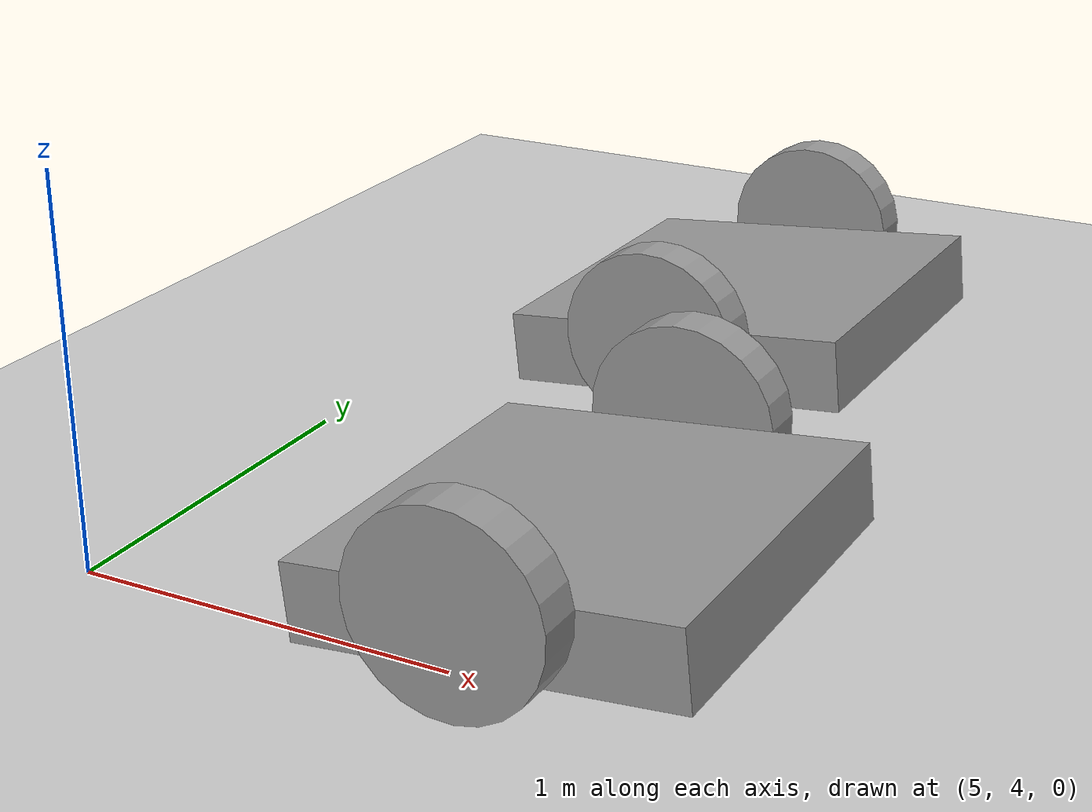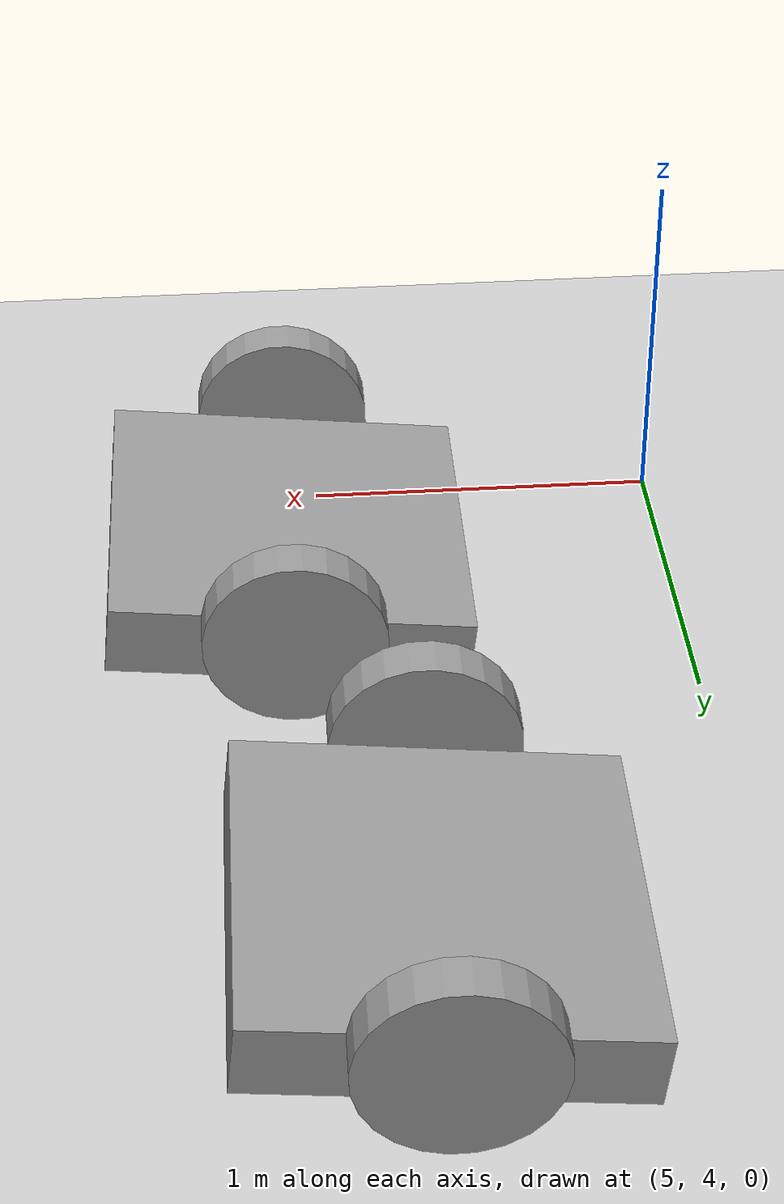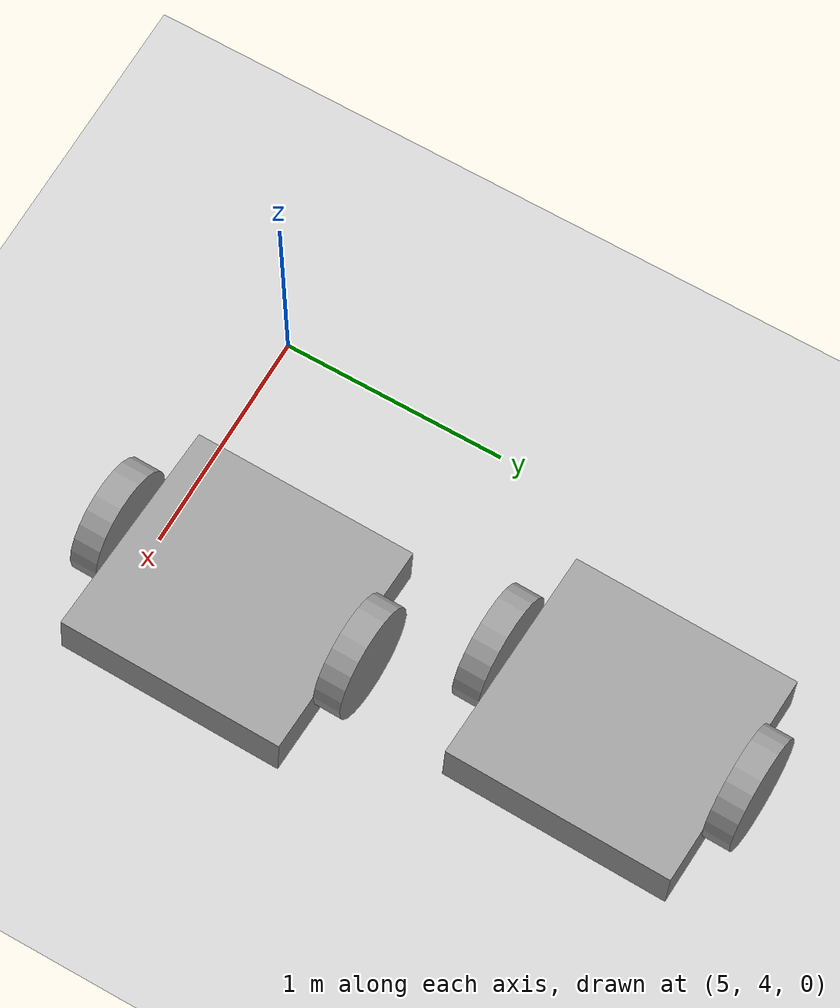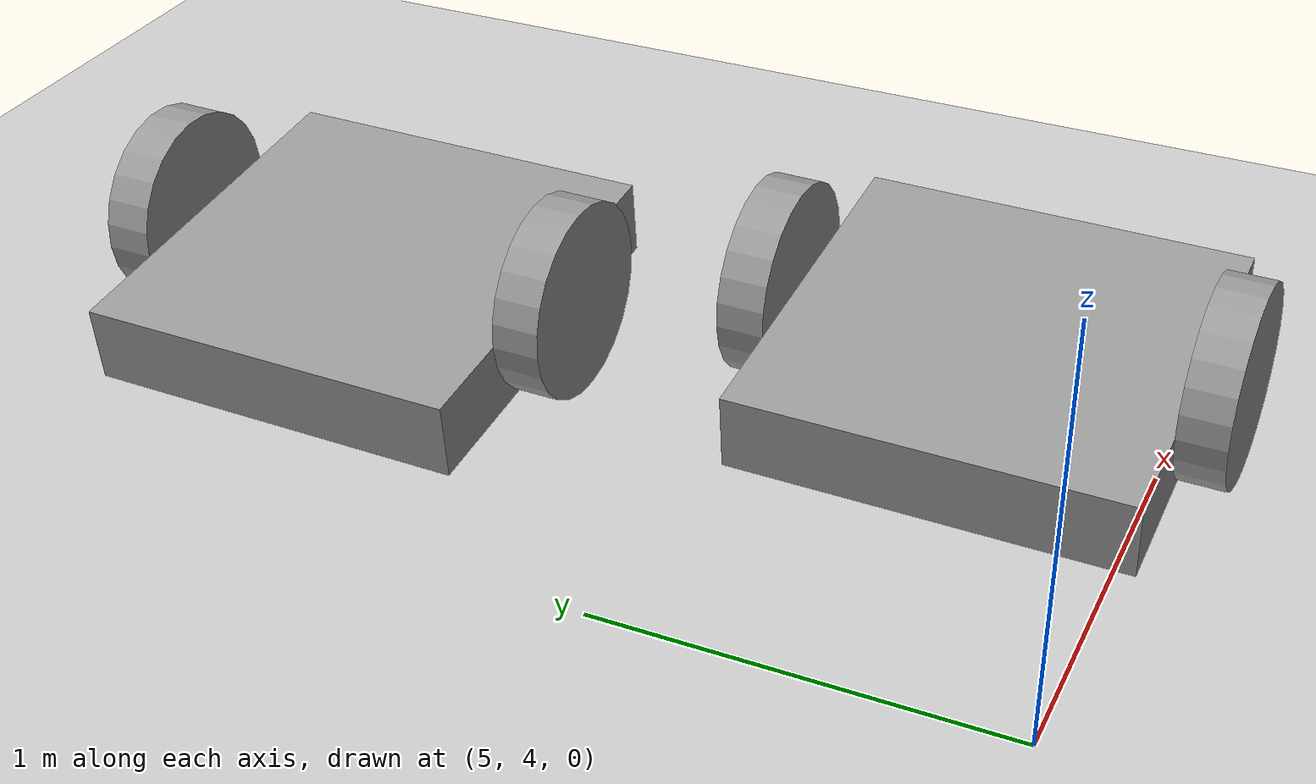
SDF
<sdf version="1.6">
 <world name="default">
  <model name="ground_plane">
   <static>1</static>
   <link name="link">
    <collision name="collision">
     <geometry><plane><normal>0 0 1</normal><size>100 100</size></plane></geometry>
     <surface>
      <contact><collide_bitmask>65535</collide_bitmask></contact>
      <friction><ode><mu>100</mu><mu2>50</mu2></ode></friction>
     </surface>
    </collision>
    <visual name="visual">
     <cast_shadows>0</cast_shadows>
     <geometry><plane><normal>0 0 1</normal><size>100 100</size></plane></geometry>
     <material>
      <script><uri>file://media/materials/scripts/gazebo.material</uri><name>Gazebo/Grey</name></script>
     </material>
    </visual>
   </link>
  </model>
  <model name="HumanoidRobot">
   <link name="link_2">
    <pose>-0 -0 -0.066667 0 -0 0</pose>
    <inertial>
     <mass>1</mass>
     <inertia>
      <ixx>0.166667</ixx>
      <ixy>0</ixy>
      <ixz>0</ixz>
      <iyy>0.166667</iyy>
      <iyz>0</iyz>
      <izz>0.166667</izz>
     </inertia>
     <pose>0 0 0.15 0 -0 0</pose>
    </inertial>
    <visual name="visual">
     <geometry><box><size>1 1 0.2</size></box></geometry>
     <material>
      <lighting>1</lighting>
      <script><uri>file://media/materials/scripts/gazebo.material</uri><name>Gazebo/Grey</name></script>
      <shader type="pixel"><normal_map>__default__</normal_map></shader>
      <ambient>0.3 0.3 0.3 1</ambient>
      <diffuse>0.7 0.7 0.7 1</diffuse>
      <specular>0.01 0.01 0.01 1</specular>
      <emissive>0 0 0 1</emissive>
     </material>
    </visual>
    <collision name="collision">
     <geometry><box><size>1 1 0.2</size></box></geometry>
     <surface>
      <friction>
       <ode><mu>1</mu><mu2>1</mu2><fdir1>0 0 0</fdir1><slip1>0</slip1><slip2>0</slip2></ode>
       <torsional>
        <coefficient>1</coefficient>
        <patch_radius>0</patch_radius>
        <surface_radius>0</surface_radius>
        <use_patch_radius>1</use_patch_radius>
        <ode><slip>0</slip></ode>
       </torsional>
      </friction>
      <bounce><restitution_coefficient>0</restitution_coefficient><threshold>1e+06</threshold></bounce>
      <contact>
       <collide_without_contact>0</collide_without_contact>
       <collide_without_contact_bitmask>1</collide_without_contact_bitmask>
       <collide_bitmask>1</collide_bitmask>
       <ode>
        <soft_cfm>0</soft_cfm>
        <soft_erp>0.2</soft_erp>
        <kp>1e+13</kp>
        <kd>1</kd>
        <max_vel>0.01</max_vel>
        <min_depth>0</min_depth>
       </ode>
       <bullet>
        <split_impulse>1</split_impulse>
        <split_impulse_penetration_threshold>-0.01</split_impulse_penetration_threshold>
        <soft_cfm>0</soft_cfm>
        <soft_erp>0.2</soft_erp>
        <kp>1e+13</kp>
        <kd>1</kd>
       </bullet>
      </contact>
     </surface>
    </collision>
   </link>
   <link name="link_3">
    <pose>-0 -0.560024 0.033333 1.5707 -0 0</pose>
    <inertial>
     <mass>1</mass>
     <inertia><ixx>0.145833</ixx><ixy>0</ixy><ixz>0</ixz><iyy>0.145833</iyy><iyz>0</iyz><izz>0.125</izz></inertia>
     <pose>0 0 0.25 1.5707 -0 0</pose>
    </inertial>
    <visual name="visual">
     <geometry><cylinder><radius>0.25</radius><length>0.12</length></cylinder></geometry>
     <material>
      <lighting>1</lighting>
      <script><uri>file://media/materials/scripts/gazebo.material</uri><name>Gazebo/Grey</name></script>
      <shader type="pixel"><normal_map>__default__</normal_map></shader>
      <ambient>0.3 0.3 0.3 1</ambient>
      <diffuse>0.7 0.7 0.7 1</diffuse>
      <specular>0.01 0.01 0.01 1</specular>
      <emissive>0 0 0 1</emissive>
     </material>
    </visual>
    <collision name="collision">
     <geometry><cylinder><radius>0.25</radius><length>0.12</length></cylinder></geometry>
     <surface>
      <friction>
       <ode><mu>1</mu><mu2>1</mu2><fdir1>0 0 0</fdir1><slip1>0</slip1><slip2>0</slip2></ode>
       <torsional>
        <coefficient>1</coefficient>
        <patch_radius>0</patch_radius>
        <surface_radius>0</surface_radius>
        <use_patch_radius>1</use_patch_radius>
        <ode><slip>0</slip></ode>
       </torsional>
      </friction>
      <bounce><restitution_coefficient>0</restitution_coefficient><threshold>1e+06</threshold></bounce>
      <contact>
       <collide_without_contact>0</collide_without_contact>
       <collide_without_contact_bitmask>1</collide_without_contact_bitmask>
       <collide_bitmask>1</collide_bitmask>
       <ode>
        <soft_cfm>0</soft_cfm>
        <soft_erp>0.2</soft_erp>
        <kp>1e+13</kp>
        <kd>1</kd>
        <max_vel>0.01</max_vel>
        <min_depth>0</min_depth>
       </ode>
       <bullet>
        <split_impulse>1</split_impulse>
        <split_impulse_penetration_threshold>-0.01</split_impulse_penetration_threshold>
        <soft_cfm>0</soft_cfm>
        <soft_erp>0.2</soft_erp>
        <kp>1e+13</kp>
        <kd>1</kd>
       </bullet>
      </contact>
     </surface>
    </collision>
   </link>
   <link name="link_3_clone">
    <pose>-0 0.560024 0.033333 1.5707 -0 0</pose>
    <inertial>
     <mass>1</mass>
     <inertia><ixx>0.145833</ixx><ixy>0</ixy><ixz>0</ixz><iyy>0.145833</iyy><iyz>0</iyz><izz>0.125</izz></inertia>
     <pose>0 0 0.25 1.5707 -0 0</pose>
    </inertial>
    <visual name="visual">
     <geometry><cylinder><radius>0.25</radius><length>0.12</length></cylinder></geometry>
     <material>
      <lighting>1</lighting>
      <script><uri>file://media/materials/scripts/gazebo.material</uri><name>Gazebo/Grey</name></script>
      <shader type="pixel"><normal_map>__default__</normal_map></shader>
      <ambient>0.3 0.3 0.3 1</ambient>
      <diffuse>0.7 0.7 0.7 1</diffuse>
      <specular>0.01 0.01 0.01 1</specular>
      <emissive>0 0 0 1</emissive>
     </material>
    </visual>
    <collision name="collision">
     <geometry><cylinder><radius>0.25</radius><length>0.12</length></cylinder></geometry>
     <surface>
      <friction>
       <ode><mu>1</mu><mu2>1</mu2><fdir1>0 0 0</fdir1><slip1>0</slip1><slip2>0</slip2></ode>
       <torsional>
        <coefficient>1</coefficient>
        <patch_radius>0</patch_radius>
        <surface_radius>0</surface_radius>
        <use_patch_radius>1</use_patch_radius>
        <ode><slip>0</slip></ode>
       </torsional>
      </friction>
      <bounce><restitution_coefficient>0</restitution_coefficient><threshold>1e+06</threshold></bounce>
      <contact>
       <collide_without_contact>0</collide_without_contact>
       <collide_without_contact_bitmask>1</collide_without_contact_bitmask>
       <collide_bitmask>1</collide_bitmask>
       <ode>
        <soft_cfm>0</soft_cfm>
        <soft_erp>0.2</soft_erp>
        <kp>1e+13</kp>
        <kd>1</kd>
        <max_vel>0.01</max_vel>
        <min_depth>0</min_depth>
       </ode>
       <bullet>
        <split_impulse>1</split_impulse>
        <split_impulse_penetration_threshold>-0.01</split_impulse_penetration_threshold>
        <soft_cfm>0</soft_cfm>
        <soft_erp>0.2</soft_erp>
        <kp>1e+13</kp>
        <kd>1</kd>
       </bullet>
      </contact>
     </surface>
    </collision>
   </link>
   <joint name="link_2_JOINT_2" type="revolute">
    <parent>link_2</parent>
    <child>link_3</child>
    <axis>
     <xyz>0 0 1</xyz>
     <use_parent_model_frame>0</use_parent_model_frame>
     <limit>
      <lower>-1.79769e+308</lower>
      <upper>1.79769e+308</upper>
      <effort>-1</effort>
      <velocity>-1</velocity>
     </limit>
     <dynamics>
      <spring_reference>0</spring_reference>
      <spring_stiffness>0</spring_stiffness>
      <damping>0</damping>
     </dynamics>
    </axis>
    <physics>
     <ode><limit><cfm>0</cfm><erp>0.2</erp></limit><suspension><cfm>0</cfm><erp>0.2</erp></suspension></ode>
    </physics>
   </joint>
   <joint name="link_2_JOINT_3" type="revolute">
    <parent>link_2</parent>
    <child>link_3_clone</child>
    <axis>
     <xyz>0 0 1</xyz>
     <use_parent_model_frame>0</use_parent_model_frame>
     <limit>
      <lower>-1.79769e+308</lower>
      <upper>1.79769e+308</upper>
      <effort>-1</effort>
      <velocity>-1</velocity>
     </limit>
     <dynamics>
      <spring_reference>0</spring_reference>
      <spring_stiffness>0</spring_stiffness>
      <damping>0</damping>
     </dynamics>
    </axis>
    <physics>
     <ode><limit><cfm>0</cfm><erp>0.2</erp></limit><suspension><cfm>0</cfm><erp>0.2</erp></suspension></ode>
    </physics>
   </joint>
   <static>0</static>
   <pose>5.8203 6.00579 0.216847 0 -0.102206 -0.022161</pose>
  </model>
  <model name="HumanoidRobot_0">
   <link name="link_2">
    <pose>-0 -0 -0.066667 0 -0 0</pose>
    <inertial>
     <mass>1</mass>
     <inertia>
      <ixx>0.166667</ixx>
      <ixy>0</ixy>
      <ixz>0</ixz>
      <iyy>0.166667</iyy>
      <iyz>0</iyz>
      <izz>0.166667</izz>
     </inertia>
     <pose>0 0 0.15 0 -0 0</pose>
    </inertial>
    <visual name="visual">
     <geometry><box><size>1 1 0.2</size></box></geometry>
     <material>
      <lighting>1</lighting>
      <script><uri>file://media/materials/scripts/gazebo.material</uri><name>Gazebo/Grey</name></script>
      <shader type="pixel"><normal_map>__default__</normal_map></shader>
      <ambient>0.3 0.3 0.3 1</ambient>
      <diffuse>0.7 0.7 0.7 1</diffuse>
      <specular>0.01 0.01 0.01 1</specular>
      <emissive>0 0 0 1</emissive>
     </material>
    </visual>
    <collision name="collision">
     <geometry><box><size>1 1 0.2</size></box></geometry>
     <surface>
      <friction>
       <ode><mu>1</mu><mu2>1</mu2><fdir1>0 0 0</fdir1><slip1>0</slip1><slip2>0</slip2></ode>
       <torsional>
        <coefficient>1</coefficient>
        <patch_radius>0</patch_radius>
        <surface_radius>0</surface_radius>
        <use_patch_radius>1</use_patch_radius>
        <ode><slip>0</slip></ode>
       </torsional>
      </friction>
      <bounce><restitution_coefficient>0</restitution_coefficient><threshold>1e+06</threshold></bounce>
      <contact>
       <collide_without_contact>0</collide_without_contact>
       <collide_without_contact_bitmask>1</collide_without_contact_bitmask>
       <collide_bitmask>1</collide_bitmask>
       <ode>
        <soft_cfm>0</soft_cfm>
        <soft_erp>0.2</soft_erp>
        <kp>1e+13</kp>
        <kd>1</kd>
        <max_vel>0.01</max_vel>
        <min_depth>0</min_depth>
       </ode>
       <bullet>
        <split_impulse>1</split_impulse>
        <split_impulse_penetration_threshold>-0.01</split_impulse_penetration_threshold>
        <soft_cfm>0</soft_cfm>
        <soft_erp>0.2</soft_erp>
        <kp>1e+13</kp>
        <kd>1</kd>
       </bullet>
      </contact>
     </surface>
    </collision>
   </link>
   <link name="link_3">
    <pose>-0 -0.560024 0.033333 1.5707 -0 0</pose>
    <inertial>
     <mass>1</mass>
     <inertia><ixx>0.145833</ixx><ixy>0</ixy><ixz>0</ixz><iyy>0.145833</iyy><iyz>0</iyz><izz>0.125</izz></inertia>
     <pose>0 0 0.25 1.5707 -0 0</pose>
    </inertial>
    <visual name="visual">
     <geometry><cylinder><radius>0.25</radius><length>0.12</length></cylinder></geometry>
     <material>
      <lighting>1</lighting>
      <script><uri>file://media/materials/scripts/gazebo.material</uri><name>Gazebo/Grey</name></script>
      <shader type="pixel"><normal_map>__default__</normal_map></shader>
      <ambient>0.3 0.3 0.3 1</ambient>
      <diffuse>0.7 0.7 0.7 1</diffuse>
      <specular>0.01 0.01 0.01 1</specular>
      <emissive>0 0 0 1</emissive>
     </material>
    </visual>
    <collision name="collision">
     <geometry><cylinder><radius>0.25</radius><length>0.12</length></cylinder></geometry>
     <surface>
      <friction>
       <ode><mu>1</mu><mu2>1</mu2><fdir1>0 0 0</fdir1><slip1>0</slip1><slip2>0</slip2></ode>
       <torsional>
        <coefficient>1</coefficient>
        <patch_radius>0</patch_radius>
        <surface_radius>0</surface_radius>
        <use_patch_radius>1</use_patch_radius>
        <ode><slip>0</slip></ode>
       </torsional>
      </friction>
      <bounce><restitution_coefficient>0</restitution_coefficient><threshold>1e+06</threshold></bounce>
      <contact>
       <collide_without_contact>0</collide_without_contact>
       <collide_without_contact_bitmask>1</collide_without_contact_bitmask>
       <collide_bitmask>1</collide_bitmask>
       <ode>
        <soft_cfm>0</soft_cfm>
        <soft_erp>0.2</soft_erp>
        <kp>1e+13</kp>
        <kd>1</kd>
        <max_vel>0.01</max_vel>
        <min_depth>0</min_depth>
       </ode>
       <bullet>
        <split_impulse>1</split_impulse>
        <split_impulse_penetration_threshold>-0.01</split_impulse_penetration_threshold>
        <soft_cfm>0</soft_cfm>
        <soft_erp>0.2</soft_erp>
        <kp>1e+13</kp>
        <kd>1</kd>
       </bullet>
      </contact>
     </surface>
    </collision>
   </link>
   <link name="link_3_clone">
    <pose>-0 0.560024 0.033333 1.5707 -0 0</pose>
    <inertial>
     <mass>1</mass>
     <inertia><ixx>0.145833</ixx><ixy>0</ixy><ixz>0</ixz><iyy>0.145833</iyy><iyz>0</iyz><izz>0.125</izz></inertia>
     <pose>0 0 0.25 1.5707 -0 0</pose>
    </inertial>
    <visual name="visual">
     <geometry><cylinder><radius>0.25</radius><length>0.12</length></cylinder></geometry>
     <material>
      <lighting>1</lighting>
      <script><uri>file://media/materials/scripts/gazebo.material</uri><name>Gazebo/Grey</name></script>
      <shader type="pixel"><normal_map>__default__</normal_map></shader>
      <ambient>0.3 0.3 0.3 1</ambient>
      <diffuse>0.7 0.7 0.7 1</diffuse>
      <specular>0.01 0.01 0.01 1</specular>
      <emissive>0 0 0 1</emissive>
     </material>
    </visual>
    <collision name="collision">
     <geometry><cylinder><radius>0.25</radius><length>0.12</length></cylinder></geometry>
     <surface>
      <friction>
       <ode><mu>1</mu><mu2>1</mu2><fdir1>0 0 0</fdir1><slip1>0</slip1><slip2>0</slip2></ode>
       <torsional>
        <coefficient>1</coefficient>
        <patch_radius>0</patch_radius>
        <surface_radius>0</surface_radius>
        <use_patch_radius>1</use_patch_radius>
        <ode><slip>0</slip></ode>
       </torsional>
      </friction>
      <bounce><restitution_coefficient>0</restitution_coefficient><threshold>1e+06</threshold></bounce>
      <contact>
       <collide_without_contact>0</collide_without_contact>
       <collide_without_contact_bitmask>1</collide_without_contact_bitmask>
       <collide_bitmask>1</collide_bitmask>
       <ode>
        <soft_cfm>0</soft_cfm>
        <soft_erp>0.2</soft_erp>
        <kp>1e+13</kp>
        <kd>1</kd>
        <max_vel>0.01</max_vel>
        <min_depth>0</min_depth>
       </ode>
       <bullet>
        <split_impulse>1</split_impulse>
        <split_impulse_penetration_threshold>-0.01</split_impulse_penetration_threshold>
        <soft_cfm>0</soft_cfm>
        <soft_erp>0.2</soft_erp>
        <kp>1e+13</kp>
        <kd>1</kd>
       </bullet>
      </contact>
     </surface>
    </collision>
   </link>
   <joint name="link_2_JOINT_2" type="revolute">
    <parent>link_2</parent>
    <child>link_3</child>
    <axis>
     <xyz>0 0 1</xyz>
     <use_parent_model_frame>0</use_parent_model_frame>
     <limit>
      <lower>-1.79769e+308</lower>
      <upper>1.79769e+308</upper>
      <effort>-1</effort>
      <velocity>-1</velocity>
     </limit>
     <dynamics>
      <spring_reference>0</spring_reference>
      <spring_stiffness>0</spring_stiffness>
      <damping>0</damping>
     </dynamics>
    </axis>
    <physics>
     <ode><limit><cfm>0</cfm><erp>0.2</erp></limit><suspension><cfm>0</cfm><erp>0.2</erp></suspension></ode>
    </physics>
   </joint>
   <joint name="link_2_JOINT_3" type="revolute">
    <parent>link_2</parent>
    <child>link_3_clone</child>
    <axis>
     <xyz>0 0 1</xyz>
     <use_parent_model_frame>0</use_parent_model_frame>
     <limit>
      <lower>-1.79769e+308</lower>
      <upper>1.79769e+308</upper>
      <effort>-1</effort>
      <velocity>-1</velocity>
     </limit>
     <dynamics>
      <spring_reference>0</spring_reference>
      <spring_stiffness>0</spring_stiffness>
      <damping>0</damping>
     </dynamics>
    </axis>
    <physics>
     <ode><limit><cfm>0</cfm><erp>0.2</erp></limit><suspension><cfm>0</cfm><erp>0.2</erp></suspension></ode>
    </physics>
   </joint>
   <static>0</static>
   <pose>6.10584 4.44197 0.216846 0 -0.102054 -0.016646</pose>
  </model>
 </world>
</sdf>
